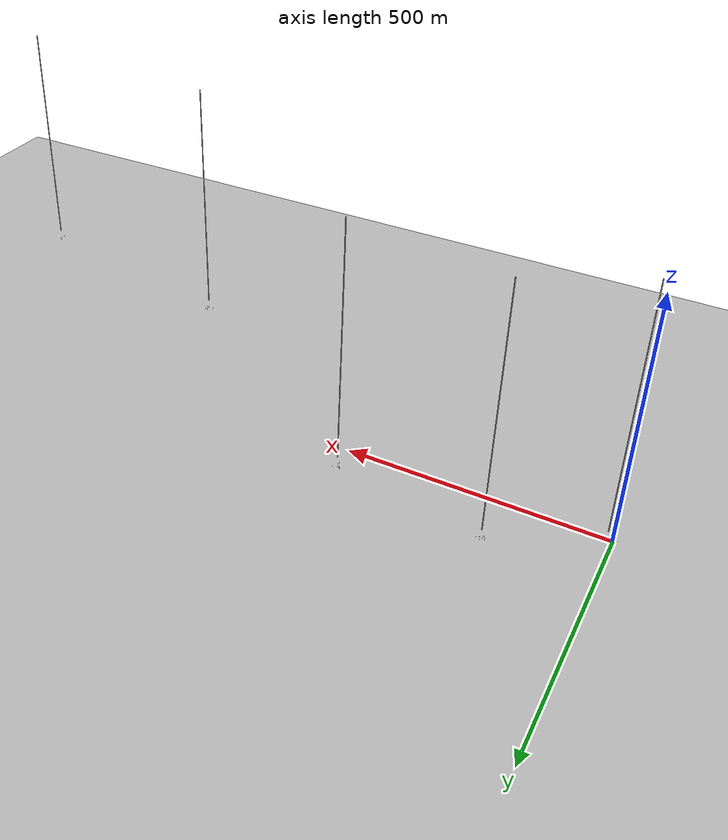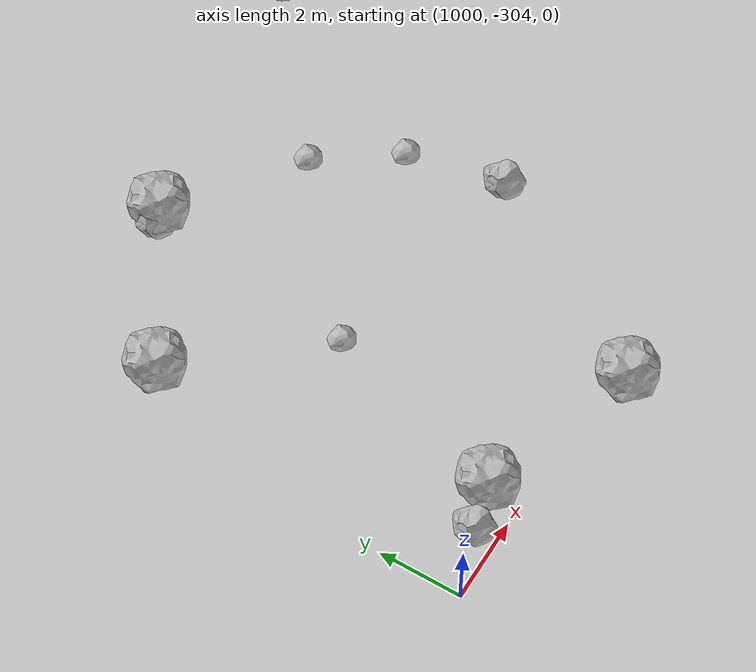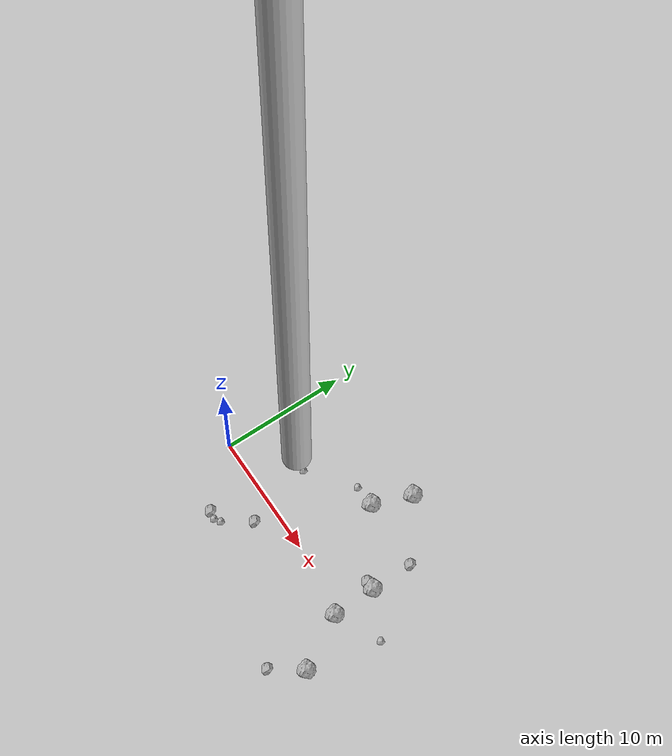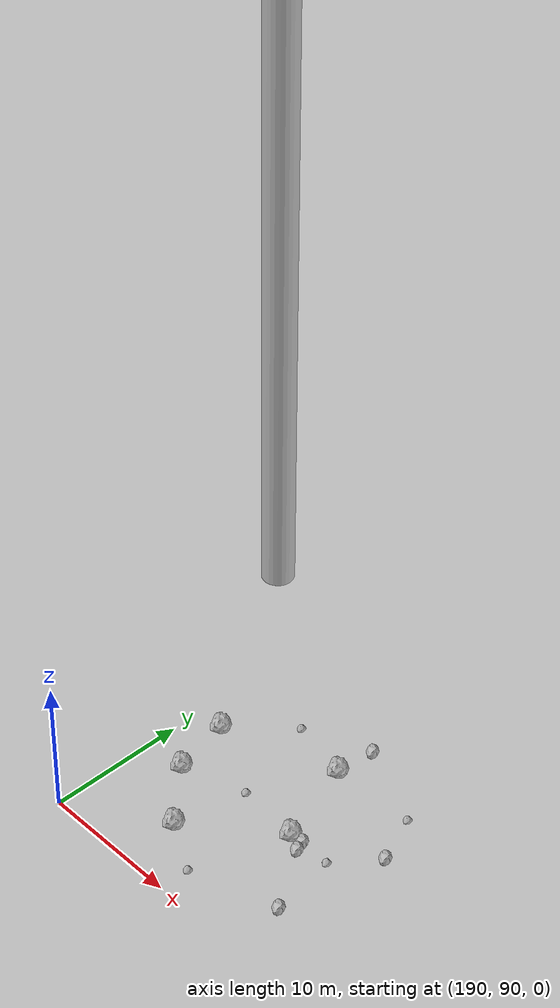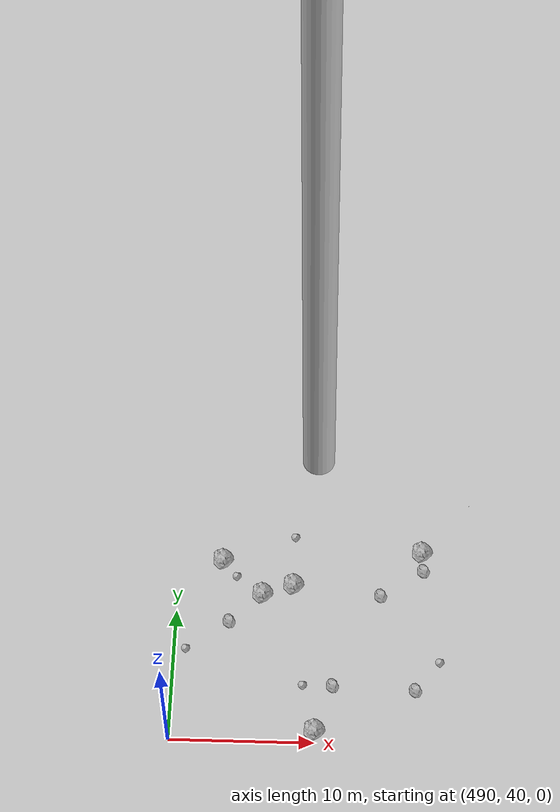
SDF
<?xml version="1.0" ?>
<sdf version="1.6">
  <world name="default">

    <include>
      <uri>model://custom_ground</uri>
    </include>

    <include>
      <uri>model://sun</uri>
    </include>

    <spherical_coordinates>
      <surface_model>EARTH_WGS84</surface_model>
      <latitude_deg>38.161479</latitude_deg>
      <longitude_deg>-122.454630</longitude_deg>
      <elevation>488.0</elevation>
      <heading_deg>90</heading_deg>
    </spherical_coordinates>

    <model name="rock1_0_0">
      <include>
        <uri>model://rock1</uri>
        <pose>11.429848586714535 9.523760102859018 0.5 0 0 0</pose>
      </include>
    </model>
    <model name="rock1_0_1">
      <include>
        <uri>model://rock1</uri>
        <pose>15.938152104352415 2.711563587855199 0.5 0 0 0</pose>
      </include>
    </model>
    <model name="rock1_0_2">
      <include>
        <uri>model://rock1</uri>
        <pose>10.262588239296754 6.430676999911466 0.5 0 0 0</pose>
      </include>
    </model>
    <model name="rock1_0_3">
      <include>
        <uri>model://rock1</uri>
        <pose>18.40819712053704 -4.958226437717133 0.5 0 0 0</pose>
      </include>
    </model>
    <model name="rock1_0_4">
      <include>
        <uri>model://rock1</uri>
        <pose>16.009217001454644 -0.8024818606322377 0.5 0 0 0</pose>
      </include>
    </model>
    <model name="rock2_0_0">
      <include>
        <uri>model://rock2</uri>
        <pose>15.128776211371855 2.6963176563982003 0.3 0 0 0</pose>
      </include>
    </model>
    <model name="rock2_0_1">
      <include>
        <uri>model://rock2</uri>
        <pose>16.61605485028933 -7.329157493796625 0.3 0 0 0</pose>
      </include>
    </model>
    <model name="rock2_0_2">
      <include>
        <uri>model://rock2</uri>
        <pose>3.7465824348400045 -4.168595392807976 0.3 0 0 0</pose>
      </include>
    </model>
    <model name="rock2_0_3">
      <include>
        <uri>model://rock2</uri>
        <pose>6.346641651084761 -1.8063113035075915 0.3 0 0 0</pose>
      </include>
    </model>
    <model name="rock2_0_4">
      <include>
        <uri>model://rock2</uri>
        <pose>15.845338771988686 6.1935567915239 0.3 0 0 0</pose>
      </include>
    </model>
    <model name="rock3_0_0">
      <include>
        <uri>model://rock3</uri>
        <pose>4.9443418247084825 3.6212032696494525 0.2 0 0 0</pose>
      </include>
    </model>
    <model name="rock3_0_1">
      <include>
        <uri>model://rock3</uri>
        <pose>8.439698088721022 6.343473062026963 0.2 0 0 0</pose>
      </include>
    </model>
    <model name="rock3_0_2">
      <include>
        <uri>model://rock3</uri>
        <pose>4.426499686173456 -4.308372550091663 0.2 0 0 0</pose>
      </include>
    </model>
    <model name="rock3_0_3">
      <include>
        <uri>model://rock3</uri>
        <pose>4.9090368495638455 -3.988786317054183 0.2 0 0 0</pose>
      </include>
    </model>
    <model name="rock3_0_4">
      <include>
        <uri>model://rock3</uri>
        <pose>19.569106699415745 0.927225347067111 0.2 0 0 0</pose>
      </include>
    </model>
    <model name="rock1_1_0">
      <include>
        <uri>model://rock1</uri>
        <pose>193.14289509571498 97.87892469269214 0.5 0 0 0</pose>
      </include>
    </model>
    <model name="rock1_1_1">
      <include>
        <uri>model://rock1</uri>
        <pose>202.4845671642015 98.90975132077641 0.5 0 0 0</pose>
      </include>
    </model>
    <model name="rock1_1_2">
      <include>
        <uri>model://rock1</uri>
        <pose>192.21939218084685 102.2478742489525 0.5 0 0 0</pose>
      </include>
    </model>
    <model name="rock1_1_3">
      <include>
        <uri>model://rock1</uri>
        <pose>200.56676126391045 105.05407040951758 0.5 0 0 0</pose>
      </include>
    </model>
    <model name="rock1_1_4">
      <include>
        <uri>model://rock1</uri>
        <pose>196.60488554172463 94.11477493308158 0.5 0 0 0</pose>
      </include>
    </model>
    <model name="rock2_1_0">
      <include>
        <uri>model://rock2</uri>
        <pose>203.68891944037725 98.2999847212377 0.3 0 0 0</pose>
      </include>
    </model>
    <model name="rock2_1_1">
      <include>
        <uri>model://rock2</uri>
        <pose>208.0630444048623 101.86874596150147 0.3 0 0 0</pose>
      </include>
    </model>
    <model name="rock2_1_2">
      <include>
        <uri>model://rock2</uri>
        <pose>203.45206820722223 98.99163364138678 0.3 0 0 0</pose>
      </include>
    </model>
    <model name="rock2_1_3">
      <include>
        <uri>model://rock2</uri>
        <pose>200.8712800467629 108.00957441597134 0.3 0 0 0</pose>
      </include>
    </model>
    <model name="rock2_1_4">
      <include>
        <uri>model://rock2</uri>
        <pose>206.38919419359547 94.12649000941724 0.3 0 0 0</pose>
      </include>
    </model>
    <model name="rock3_1_0">
      <include>
        <uri>model://rock3</uri>
        <pose>200.12870462693692 92.1192145484455 0.2 0 0 0</pose>
      </include>
    </model>
    <model name="rock3_1_1">
      <include>
        <uri>model://rock3</uri>
        <pose>197.7373344414648 99.36027187839079 0.2 0 0 0</pose>
      </include>
    </model>
    <model name="rock3_1_2">
      <include>
        <uri>model://rock3</uri>
        <pose>206.6596126142569 105.28501919594227 0.2 0 0 0</pose>
      </include>
    </model>
    <model name="rock3_1_3">
      <include>
        <uri>model://rock3</uri>
        <pose>205.693851214146 98.91353647534052 0.2 0 0 0</pose>
      </include>
    </model>
    <model name="rock3_1_4">
      <include>
        <uri>model://rock3</uri>
        <pose>195.95258931116956 106.12268258706214 0.2 0 0 0</pose>
      </include>
    </model>
    <model name="rock1_2_0">
      <include>
        <uri>model://rock1</uri>
        <pose>500.0104077857073 40.762894730105664 0.5 0 0 0</pose>
      </include>
    </model>
    <model name="rock1_2_1">
      <include>
        <uri>model://rock1</uri>
        <pose>496.0523207368878 51.362669331013365 0.5 0 0 0</pose>
      </include>
    </model>
    <model name="rock1_2_2">
      <include>
        <uri>model://rock1</uri>
        <pose>498.2337931970021 52.13567225941661 0.5 0 0 0</pose>
      </include>
    </model>
    <model name="rock1_2_3">
      <include>
        <uri>model://rock1</uri>
        <pose>507.39661250102665 55.015013698038864 0.5 0 0 0</pose>
      </include>
    </model>
    <model name="rock1_2_4">
      <include>
        <uri>model://rock1</uri>
        <pose>493.12793776990856 54.06631801726568 0.5 0 0 0</pose>
      </include>
    </model>
    <model name="rock2_2_0">
      <include>
        <uri>model://rock2</uri>
        <pose>504.4231932128798 51.50934613696083 0.3 0 0 0</pose>
      </include>
    </model>
    <model name="rock2_2_1">
      <include>
        <uri>model://rock2</uri>
        <pose>501.1514290349715 44.29018620449158 0.3 0 0 0</pose>
      </include>
    </model>
    <model name="rock2_2_2">
      <include>
        <uri>model://rock2</uri>
        <pose>493.7438251357968 49.18090281519497 0.3 0 0 0</pose>
      </include>
    </model>
    <model name="rock2_2_3">
      <include>
        <uri>model://rock2</uri>
        <pose>507.4702193874099 53.60866080810312 0.3 0 0 0</pose>
      </include>
    </model>
    <model name="rock2_2_4">
      <include>
        <uri>model://rock2</uri>
        <pose>506.91289863257975 44.07578082410201 0.3 0 0 0</pose>
      </include>
    </model>
    <model name="rock3_2_0">
      <include>
        <uri>model://rock3</uri>
        <pose>499.07201781827274 44.28871478221573 0.2 0 0 0</pose>
      </include>
    </model>
    <model name="rock3_2_1">
      <include>
        <uri>model://rock3</uri>
        <pose>508.6137845699114 46.29053981396823 0.2 0 0 0</pose>
      </include>
    </model>
    <model name="rock3_2_2">
      <include>
        <uri>model://rock3</uri>
        <pose>494.13397289003495 52.835723008679025 0.2 0 0 0</pose>
      </include>
    </model>
    <model name="rock3_2_3">
      <include>
        <uri>model://rock3</uri>
        <pose>498.24064144074475 56.18025205914036 0.2 0 0 0</pose>
      </include>
    </model>
    <model name="rock3_2_4">
      <include>
        <uri>model://rock3</uri>
        <pose>490.7905167794449 46.948142441904935 0.2 0 0 0</pose>
      </include>
    </model>
    <model name="rock1_3_0">
      <include>
        <uri>model://rock1</uri>
        <pose>1004.8094673391378 -293.3901779059534 0.5 0 0 0</pose>
      </include>
    </model>
    <model name="rock1_3_1">
      <include>
        <uri>model://rock1</uri>
        <pose>1001.3532803321547 -295.5126841095842 0.5 0 0 0</pose>
      </include>
    </model>
    <model name="rock1_3_2">
      <include>
        <uri>model://rock1</uri>
        <pose>1006.4756290108346 -304.44513568142395 0.5 0 0 0</pose>
      </include>
    </model>
    <model name="rock1_3_3">
      <include>
        <uri>model://rock1</uri>
        <pose>1002.5883228006372 -303.183687228812 0.5 0 0 0</pose>
      </include>
    </model>
    <model name="rock1_3_4">
      <include>
        <uri>model://rock1</uri>
        <pose>990.4969946780803 -301.9875651768033 0.5 0 0 0</pose>
      </include>
    </model>
    <model name="rock2_3_0">
      <include>
        <uri>model://rock2</uri>
        <pose>999.8675052457622 -291.52617353329737 0.3 0 0 0</pose>
      </include>
    </model>
    <model name="rock2_3_1">
      <include>
        <uri>model://rock2</uri>
        <pose>1004.4578149628388 -293.4662014957659 0.3 0 0 0</pose>
      </include>
    </model>
    <model name="rock2_3_2">
      <include>
        <uri>model://rock2</uri>
        <pose>1001.4979140354375 -303.44053407082276 0.3 0 0 0</pose>
      </include>
    </model>
    <model name="rock2_3_3">
      <include>
        <uri>model://rock2</uri>
        <pose>1009.4031426120342 -299.63719615912817 0.3 0 0 0</pose>
      </include>
    </model>
    <model name="rock2_3_4">
      <include>
        <uri>model://rock2</uri>
        <pose>995.8158898490024 -302.1416101816557 0.3 0 0 0</pose>
      </include>
    </model>
    <model name="rock3_3_0">
      <include>
        <uri>model://rock3</uri>
        <pose>995.065377200481 -301.09913782169366 0.2 0 0 0</pose>
      </include>
    </model>
    <model name="rock3_3_1">
      <include>
        <uri>model://rock3</uri>
        <pose>1003.9960370383476 -298.64989263299964 0.2 0 0 0</pose>
      </include>
    </model>
    <model name="rock3_3_2">
      <include>
        <uri>model://rock3</uri>
        <pose>1007.6590252651717 -295.54110859374623 0.2 0 0 0</pose>
      </include>
    </model>
    <model name="rock3_3_3">
      <include>
        <uri>model://rock3</uri>
        <pose>993.540517073612 -301.4801462170727 0.2 0 0 0</pose>
      </include>
    </model>
    <model name="rock3_3_4">
      <include>
        <uri>model://rock3</uri>
        <pose>1008.9308595201803 -297.3645021434598 0.2 0 0 0</pose>
      </include>
    </model>
    <model name="rock1_4_0">
      <include>
        <uri>model://rock1</uri>
        <pose>1499.701002519942 -396.4421550792553 0.5 0 0 0</pose>
      </include>
    </model>
    <model name="rock1_4_1">
      <include>
        <uri>model://rock1</uri>
        <pose>1500.5106586547263 -409.7235059215465 0.5 0 0 0</pose>
      </include>
    </model>
    <model name="rock1_4_2">
      <include>
        <uri>model://rock1</uri>
        <pose>1502.6959130960265 -398.68229395765763 0.5 0 0 0</pose>
      </include>
    </model>
    <model name="rock1_4_3">
      <include>
        <uri>model://rock1</uri>
        <pose>1501.41259599664 -391.7030510411548 0.5 0 0 0</pose>
      </include>
    </model>
    <model name="rock1_4_4">
      <include>
        <uri>model://rock1</uri>
        <pose>1494.3990010648686 -393.4846309212786 0.5 0 0 0</pose>
      </include>
    </model>
    <model name="rock2_4_0">
      <include>
        <uri>model://rock2</uri>
        <pose>1501.2724289080268 -398.3328620186095 0.3 0 0 0</pose>
      </include>
    </model>
    <model name="rock2_4_1">
      <include>
        <uri>model://rock2</uri>
        <pose>1494.2021666105152 -404.84188662351573 0.3 0 0 0</pose>
      </include>
    </model>
    <model name="rock2_4_2">
      <include>
        <uri>model://rock2</uri>
        <pose>1495.766063517174 -397.5143640203376 0.3 0 0 0</pose>
      </include>
    </model>
    <model name="rock2_4_3">
      <include>
        <uri>model://rock2</uri>
        <pose>1506.3417978858745 -396.5097342935097 0.3 0 0 0</pose>
      </include>
    </model>
    <model name="rock2_4_4">
      <include>
        <uri>model://rock2</uri>
        <pose>1491.1223568506346 -397.7661057971745 0.3 0 0 0</pose>
      </include>
    </model>
    <model name="rock3_4_0">
      <include>
        <uri>model://rock3</uri>
        <pose>1496.2069853167773 -394.3494331361709 0.2 0 0 0</pose>
      </include>
    </model>
    <model name="rock3_4_1">
      <include>
        <uri>model://rock3</uri>
        <pose>1494.538304180114 -394.19005278200865 0.2 0 0 0</pose>
      </include>
    </model>
    <model name="rock3_4_2">
      <include>
        <uri>model://rock3</uri>
        <pose>1495.117260400825 -406.7043721530958 0.2 0 0 0</pose>
      </include>
    </model>
    <model name="rock3_4_3">
      <include>
        <uri>model://rock3</uri>
        <pose>1505.434646208032 -392.23540457883456 0.2 0 0 0</pose>
      </include>
    </model>
    <model name="rock3_4_4">
      <include>
        <uri>model://rock3</uri>
        <pose>1506.4307527799622 -393.25503837539014 0.2 0 0 0</pose>
      </include>
    </model>

    <model name="cylinder_1">
      <static>true</static>
      <link name="link">
        <visual name="visual">
          <geometry>
            <cylinder>
              <radius>1</radius>
              <length>500</length>
            </cylinder>
          </geometry>
        </visual>
      </link>
      <pose>10 0 270 0 0 0</pose>
    </model>

    <model name="cylinder_2">
      <static>true</static>
      <link name="link">
        <visual name="visual">
          <geometry>
            <cylinder>
              <radius>1</radius>
              <length>500</length>
            </cylinder>
          </geometry>
        </visual>
      </link>
      <pose>200 100 270 0 0 0</pose>
    </model>

    <model name="cylinder_3">
      <static>true</static>
      <link name="link">
        <visual name="visual">
          <geometry>
            <cylinder>
              <radius>1</radius>
              <length>500</length>
            </cylinder>
          </geometry>
        </visual>
      </link>
      <pose>500 50 270 0 0 0</pose>
    </model>

    <model name="cylinder_4">
      <static>true</static>
      <link name="link">
        <visual name="visual">
          <geometry>
            <cylinder>
              <radius>1</radius>
              <length>500</length>
            </cylinder>
          </geometry>
        </visual>
      </link>
      <pose>1000 -300 270 0 0 0</pose>
    </model>

    <model name="cylinder_5">
      <static>true</static>
      <link name="link">
        <visual name="visual">
          <geometry>
            <cylinder>
              <radius>1</radius>
              <length>500</length>
            </cylinder>
          </geometry>
        </visual>
      </link>
      <pose>1500 -400 270 0 0 0</pose>
    </model>

  </world>
</sdf>

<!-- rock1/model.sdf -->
<sdf version="1.6">
  <model name="rock1">
    <static>true</static> <!-- Set to true if the model should not move -->
    <pose>0 0 0 0 0 0</pose>

    <!--z offset is 0.5 for full scale-->

    <link name="link">
      <collision name="rock1_collision">
        <geometry>
          <mesh>
            <uri>model://meshes/rock1.dae</uri>
          </mesh>
        </geometry>
      </collision>
      <visual name="rock1_visual">
        <geometry>
          <mesh>
            <uri>model://meshes/rock1.dae</uri>
          </mesh>
        </geometry>
        <material>
          <script>
            <uri>model://materials/scripts/sand_pebbles.material</uri>
            <name>custom_ground/Image</name>
          </script>
        </material>
      </visual>
    </link>
  </model>
</sdf>

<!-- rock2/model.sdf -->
<sdf version="1.6">
  <model name="rock2">
    <static>true</static> <!-- Set to true if the model should not move -->
    <pose>0 0 0 0 0 0</pose>

    <!--z offset is 0.3 for full scale-->

    <link name="link">
      <collision name="rock2_collision">
        <geometry>
          <mesh>
            <uri>model://meshes/rock2.dae</uri>
          </mesh>
        </geometry>
      </collision>
      <visual name="rock2_visual">
        <geometry>
          <mesh>
            <uri>model://meshes/rock2.dae</uri>
          </mesh>
        </geometry>
        <material>
          <script>
            <uri>model://materials/scripts/sand_pebbles.material</uri>
            <name>custom_ground/Image</name>
          </script>
        </material>
      </visual>
    </link>
  </model>
</sdf>

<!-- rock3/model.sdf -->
<sdf version="1.6">
  <model name="rock3">
    <static>true</static> <!-- Set to true if the model should not move -->
    <pose>0 0 0 0 0 0</pose>

    <!--z offset is 0.2 for full scale-->

    <link name="link">
      <collision name="rock3_collision">
        <geometry>
          <mesh>
            <uri>model://meshes/rock3.dae</uri>
          </mesh>
        </geometry>
      </collision>
      <visual name="rock3_visual">
        <geometry>
          <mesh>
            <uri>model://meshes/rock3.dae</uri>
          </mesh>
        </geometry>
        <material>
          <script>
            <uri>model://materials/scripts/sand_pebbles.material</uri>
            <name>custom_ground/Image</name>
          </script>
        </material>
      </visual>
    </link>
  </model>
</sdf>

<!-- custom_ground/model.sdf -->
<sdf version="1.6">
  <model name="custom_ground">
    <static>true</static> <!-- Ground is static and immovable -->
    <link name="ground_link">
      <pose>240 0 0 0 0 0</pose> <!-- Position and orientation relative to the world -->
      <!-- Visual Representation -->
      <visual name="ground_visual">
        <geometry>
          <plane>
            <normal>0 0 1</normal> <!-- Upward facing plane -->
            <size>500 500</size> <!-- Size of the plane -->
          </plane>
        </geometry>
        <material>
          <script>
            <uri>model://materials/scripts/sand_pebbles.material</uri>
            <name>custom_ground/Image</name>
          </script>
        </material>
      </visual>

      <!-- Collision Representation -->
      <collision name="ground_collision">
        <geometry>
          <plane>
            <normal>0 0 1</normal>
            <size>100 100</size>
          </plane>
        </geometry>
      </collision>

    </link>
  </model>
</sdf>
